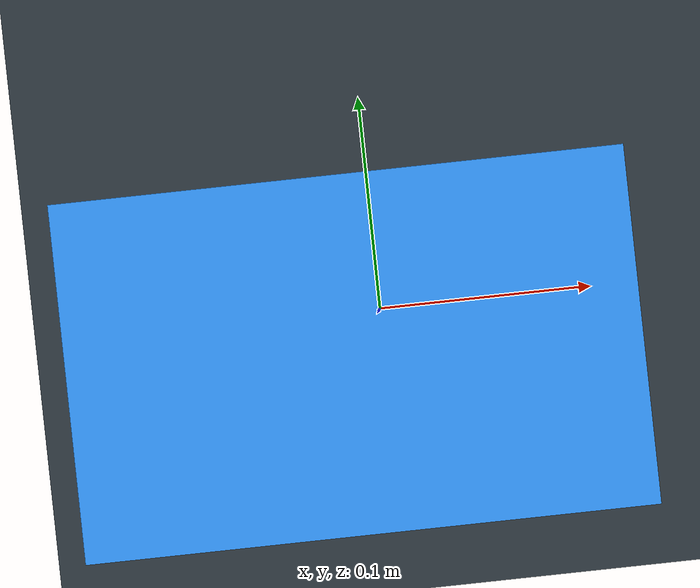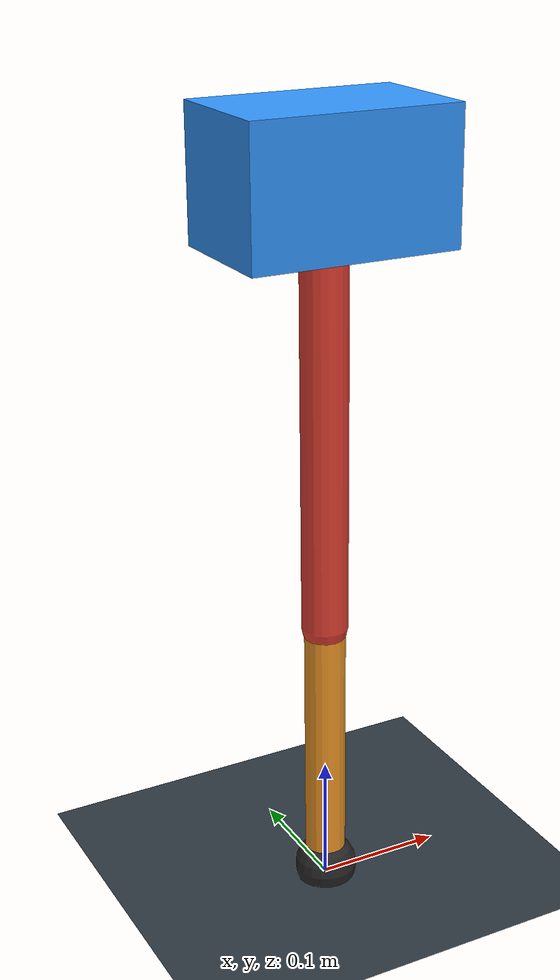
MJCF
<mujoco model="single_axis_two_bar">
  <compiler angle="radian" inertiafromgeom="true"/>
  <option timestep="0.001" integrator="implicitfast" gravity="0 0 -9.81"/>
  <default>
    <joint damping="0.08"/>
    <geom friction="1.2 0.01 0.0001" condim="3"/>
  </default>
  <worldbody>
    <geom name="floor" type="plane" size="5 5 0.1" rgba="0.18 0.22 0.25 1"/>
    <body name="carriage" pos="0 0 0.5656191224912259">
      <joint name="pole_slide" type="slide" axis="0 0 1"/>
      <geom name="payload" type="box" size="0.08 0.05 0.05" mass="3.9986280033732617" rgba="0.2 0.6 1 1"/>
      <body name="thigh" pos="0 0 0">
        <joint name="hip" type="hinge" axis="0 1 0"/>
        <geom name="thigh_link" type="capsule" fromto="0 0 0 0 0 -0.3430300392271851" size="0.018" mass="0.24441343569142138" rgba="0.9 0.25 0.2 1"/>
        <body name="shank" pos="0 0 -0.3430300392271851">
          <joint name="knee" type="hinge" axis="0 1 0"/>
          <geom name="shank_link" type="capsule" fromto="0 0 0 0 0 -0.2143092623101612" size="0.016" mass="0.15269818124304205" rgba="0.95 0.6 0.15 1"/>
          <geom name="foot" type="sphere" pos="0 0 -0.2143092623101612" size="0.025" mass="0.03" rgba="0.15 0.15 0.15 1"/>
          <site name="toe" pos="0 0 -0.2143092623101612" size="0.008"/>
        </body>
      </body>
    </body>
  </worldbody>
  <actuator>
    <motor name="hip_motor" joint="hip" ctrlrange="-33.901582220290344 33.901582220290344"/>
    <motor name="knee_motor" joint="knee" ctrlrange="-166.92275711624518 166.92275711624518"/>
  </actuator>
</mujoco>
